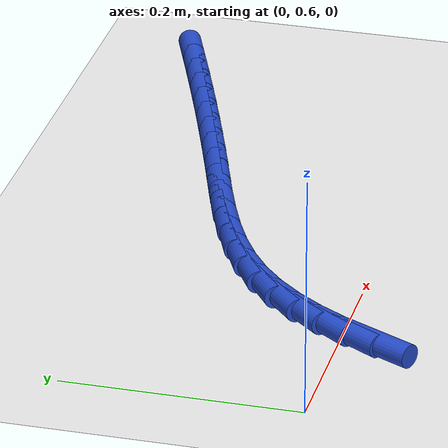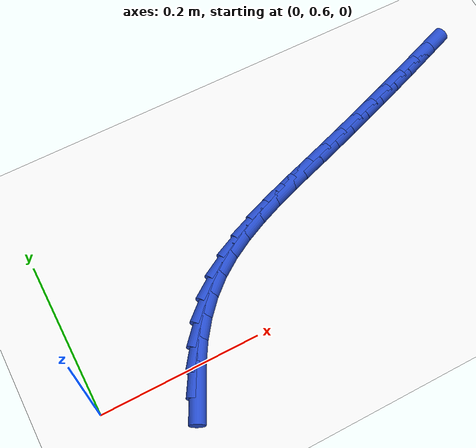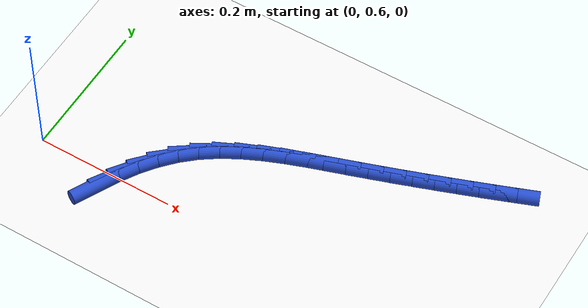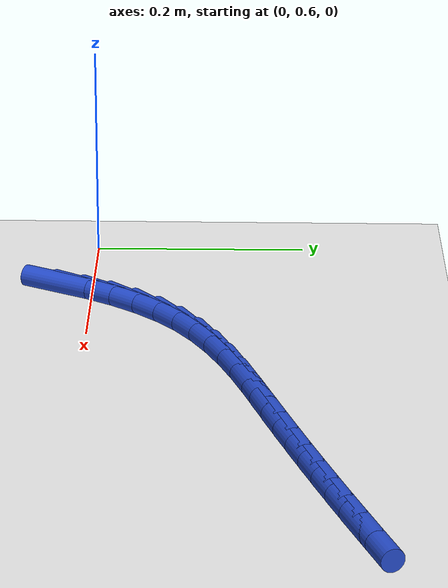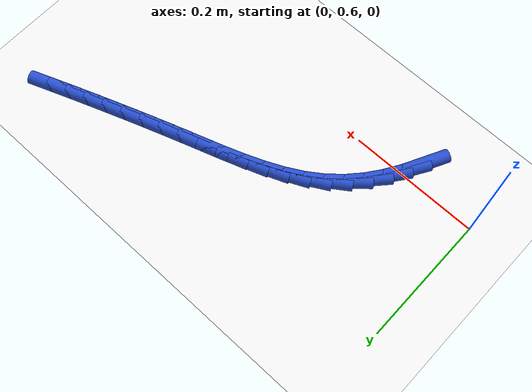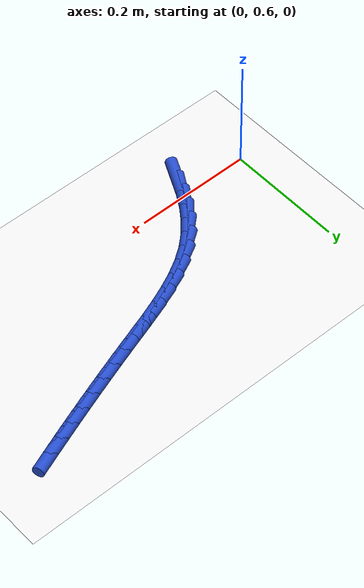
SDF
<sdf version="1.6">
 <world name="default">
  <model name="ground_plane">
   <static>1</static>
   <link name="link">
    <collision name="collision">
     <geometry><plane><normal>0 0 1</normal><size>100 100</size></plane></geometry>
     <surface><friction><ode><mu>100</mu><mu2>50</mu2></ode></friction></surface>
    </collision>
    <visual name="visual">
     <cast_shadows>0</cast_shadows>
     <geometry><plane><normal>0 0 1</normal><size>100 100</size></plane></geometry>
     <material>
      <script><uri>file://media/materials/scripts/gazebo.material</uri><name>Gazebo/WhiteGlow</name></script>
     </material>
    </visual>
   </link>
  </model>
  <model name="line">
   <link name="link_19">
    <pose>0.10825178351441228 0.5725951011586532 0.01 0 1.57 1.1062275232757208</pose>
    <collision name="collision">
     <geometry><cylinder><radius>0.01</radius><length>0.08</length></cylinder></geometry>
    </collision>
    <visual name="visual">
     <material>
      <script><name>Gazebo/Blue</name><uri>file://media/materials/scripts/gazebo.material</uri></script>
     </material>
     <geometry><cylinder><radius>0.01</radius><length>0.08</length></cylinder></geometry>
    </visual>
   </link>
   <link name="link_20">
    <pose>0.12137424331051255 0.5987796901959827 0.01 0 1.57 1.0276849493713263</pose>
    <collision name="collision">
     <geometry><cylinder><radius>0.01</radius><length>0.08</length></cylinder></geometry>
    </collision>
    <visual name="visual">
     <material>
      <script><name>Gazebo/Blue</name><uri>file://media/materials/scripts/gazebo.material</uri></script>
     </material>
     <geometry><cylinder><radius>0.01</radius><length>0.08</length></cylinder></geometry>
    </visual>
   </link>
   <link name="link_21">
    <pose>0.13622535744357284 0.6233811956290853 0.01 0 1.57 0.9377711497290439</pose>
    <collision name="collision">
     <geometry><cylinder><radius>0.01</radius><length>0.08</length></cylinder></geometry>
    </collision>
    <visual name="visual">
     <material>
      <script><name>Gazebo/Blue</name><uri>file://media/materials/scripts/gazebo.material</uri></script>
     </material>
     <geometry><cylinder><radius>0.01</radius><length>0.08</length></cylinder></geometry>
    </visual>
   </link>
   <link name="link_22">
    <pose>0.15297220616764845 0.6462045791288932 0.01 0 1.57 0.8368043085060505</pose>
    <collision name="collision">
     <geometry><cylinder><radius>0.01</radius><length>0.08</length></cylinder></geometry>
    </collision>
    <visual name="visual">
     <material>
      <script><name>Gazebo/Blue</name><uri>file://media/materials/scripts/gazebo.material</uri></script>
     </material>
     <geometry><cylinder><radius>0.01</radius><length>0.08</length></cylinder></geometry>
    </visual>
   </link>
   <link name="link_23">
    <pose>0.17178186973679455 0.667054802366337 0.01 0 1.57 0.726116245392412</pose>
    <collision name="collision">
     <geometry><cylinder><radius>0.01</radius><length>0.08</length></cylinder></geometry>
    </collision>
    <visual name="visual">
     <material>
      <script><name>Gazebo/Blue</name><uri>file://media/materials/scripts/gazebo.material</uri></script>
     </material>
     <geometry><cylinder><radius>0.01</radius><length>0.08</length></cylinder></geometry>
    </visual>
   </link>
   <link name="link_24">
    <pose>0.19282142840506644 0.6857368270123481 0.01 0 1.57 0.611949974813165</pose>
    <collision name="collision">
     <geometry><cylinder><radius>0.01</radius><length>0.08</length></cylinder></geometry>
    </collision>
    <visual name="visual">
     <material>
      <script><name>Gazebo/Blue</name><uri>file://media/materials/scripts/gazebo.material</uri></script>
     </material>
     <geometry><cylinder><radius>0.01</radius><length>0.08</length></cylinder></geometry>
    </visual>
   </link>
   <link name="link_25">
    <pose>0.21617948076257365 0.7021301000594293 0.01 0 1.57 0.5149626203158446</pose>
    <collision name="collision">
     <geometry><cylinder><radius>0.01</radius><length>0.08</length></cylinder></geometry>
    </collision>
    <visual name="visual">
     <material>
      <script><name>Gazebo/Blue</name><uri>file://media/materials/scripts/gazebo.material</uri></script>
     </material>
     <geometry><cylinder><radius>0.01</radius><length>0.08</length></cylinder></geometry>
    </visual>
   </link>
   <link name="link_26">
    <pose>0.24155100281603242 0.7164876475404285 0.01 0 1.57 0.44002951846939714</pose>
    <collision name="collision">
     <geometry><cylinder><radius>0.01</radius><length>0.08</length></cylinder></geometry>
    </collision>
    <visual name="visual">
     <material>
      <script><name>Gazebo/Blue</name><uri>file://media/materials/scripts/gazebo.material</uri></script>
     </material>
     <geometry><cylinder><radius>0.01</radius><length>0.08</length></cylinder></geometry>
    </visual>
   </link>
   <link name="link_27">
    <pose>0.26850782767663767 0.7291793678595357 0.01 0 1.57 0.3851054796450259</pose>
    <collision name="collision">
     <geometry><cylinder><radius>0.01</radius><length>0.08</length></cylinder></geometry>
    </collision>
    <visual name="visual">
     <material>
      <script><name>Gazebo/Blue</name><uri>file://media/materials/scripts/gazebo.material</uri></script>
     </material>
     <geometry><cylinder><radius>0.01</radius><length>0.08</length></cylinder></geometry>
    </visual>
   </link>
   <link name="link_28">
    <pose>0.29662174632080085 0.7405751994101897 0.01 0 1.57 0.34820711535109883</pose>
    <collision name="collision">
     <geometry><cylinder><radius>0.01</radius><length>0.08</length></cylinder></geometry>
    </collision>
    <visual name="visual">
     <material>
      <script><name>Gazebo/Blue</name><uri>file://media/materials/scripts/gazebo.material</uri></script>
     </material>
     <geometry><cylinder><radius>0.01</radius><length>0.08</length></cylinder></geometry>
    </visual>
   </link>
   <link name="link_29">
    <pose>0.32546454972493427 0.7510450805858301 0.01 0 1.57 0.3278949395724656</pose>
    <collision name="collision">
     <geometry><cylinder><radius>0.01</radius><length>0.08</length></cylinder></geometry>
    </collision>
    <visual name="visual">
     <material>
      <script><name>Gazebo/Blue</name><uri>file://media/materials/scripts/gazebo.material</uri></script>
     </material>
     <geometry><cylinder><radius>0.01</radius><length>0.08</length></cylinder></geometry>
    </visual>
   </link>
   <link name="link_30">
    <pose>0.35460802886544934 0.7609589497798951 0.01 0 1.57 0.3233779443561017</pose>
    <collision name="collision">
     <geometry><cylinder><radius>0.01</radius><length>0.08</length></cylinder></geometry>
    </collision>
    <visual name="visual">
     <material>
      <script><name>Gazebo/Blue</name><uri>file://media/materials/scripts/gazebo.material</uri></script>
     </material>
     <geometry><cylinder><radius>0.01</radius><length>0.08</length></cylinder></geometry>
    </visual>
   </link>
   <link name="link_31">
    <pose>0.38362711490932233 0.7706844796199986 0.01 0 1.57 0.3286920556149737</pose>
    <collision name="collision">
     <geometry><cylinder><radius>0.01</radius><length>0.08</length></cylinder></geometry>
    </collision>
    <visual name="visual">
     <material>
      <script><name>Gazebo/Blue</name><uri>file://media/materials/scripts/gazebo.material</uri></script>
     </material>
     <geometry><cylinder><radius>0.01</radius><length>0.08</length></cylinder></geometry>
    </visual>
   </link>
   <link name="link_32">
    <pose>0.4122801526897016 0.7804570028619167 0.01 0 1.57 0.33470451549707375</pose>
    <collision name="collision">
     <geometry><cylinder><radius>0.01</radius><length>0.08</length></cylinder></geometry>
    </collision>
    <visual name="visual">
     <material>
      <script><name>Gazebo/Blue</name><uri>file://media/materials/scripts/gazebo.material</uri></script>
     </material>
     <geometry><cylinder><radius>0.01</radius><length>0.08</length></cylinder></geometry>
    </visual>
   </link>
   <link name="link_33">
    <pose>0.440606941147344 0.7903087725165727 0.01 0 1.57 0.340591693265679</pose>
    <collision name="collision">
     <geometry><cylinder><radius>0.01</radius><length>0.08</length></cylinder></geometry>
    </collision>
    <visual name="visual">
     <material>
      <script><name>Gazebo/Blue</name><uri>file://media/materials/scripts/gazebo.material</uri></script>
     </material>
     <geometry><cylinder><radius>0.01</radius><length>0.08</length></cylinder></geometry>
    </visual>
   </link>
   <link name="link_34">
    <pose>0.46867116174943524 0.8002548094520903 0.01 0 1.57 0.3463116413430221</pose>
    <collision name="collision">
     <geometry><cylinder><radius>0.01</radius><length>0.08</length></cylinder></geometry>
    </collision>
    <visual name="visual">
     <material>
      <script><name>Gazebo/Blue</name><uri>file://media/materials/scripts/gazebo.material</uri></script>
     </material>
     <geometry><cylinder><radius>0.01</radius><length>0.08</length></cylinder></geometry>
    </visual>
   </link>
   <link name="link_35">
    <pose>0.49653649596316135 0.8103101345365932 0.01 0 1.57 0.35182365664351933</pose>
    <collision name="collision">
     <geometry><cylinder><radius>0.01</radius><length>0.08</length></cylinder></geometry>
    </collision>
    <visual name="visual">
     <material>
      <script><name>Gazebo/Blue</name><uri>file://media/materials/scripts/gazebo.material</uri></script>
     </material>
     <geometry><cylinder><radius>0.01</radius><length>0.08</length></cylinder></geometry>
    </visual>
   </link>
   <link name="link_36">
    <pose>0.524266625255708 0.8204897686382059 0.01 0 1.57 0.35708921926782794</pose>
    <collision name="collision">
     <geometry><cylinder><radius>0.01</radius><length>0.08</length></cylinder></geometry>
    </collision>
    <visual name="visual">
     <material>
      <script><name>Gazebo/Blue</name><uri>file://media/materials/scripts/gazebo.material</uri></script>
     </material>
     <geometry><cylinder><radius>0.01</radius><length>0.08</length></cylinder></geometry>
    </visual>
   </link>
   <link name="link_37">
    <pose>0.5519252310942612 0.830808732625052 0.01 0 1.57 0.36207287650573394</pose>
    <collision name="collision">
     <geometry><cylinder><radius>0.01</radius><length>0.08</length></cylinder></geometry>
    </collision>
    <visual name="visual">
     <material>
      <script><name>Gazebo/Blue</name><uri>file://media/materials/scripts/gazebo.material</uri></script>
     </material>
     <geometry><cylinder><radius>0.01</radius><length>0.08</length></cylinder></geometry>
    </visual>
   </link>
   <link name="link_38">
    <pose>0.5795759949460065 0.8412820473652557 0.01 0 1.57 0.36674303009309084</pose>
    <collision name="collision">
     <geometry><cylinder><radius>0.01</radius><length>0.08</length></cylinder></geometry>
    </collision>
    <visual name="visual">
     <material>
      <script><name>Gazebo/Blue</name><uri>file://media/materials/scripts/gazebo.material</uri></script>
     </material>
     <geometry><cylinder><radius>0.01</radius><length>0.08</length></cylinder></geometry>
    </visual>
   </link>
  </model>
 </world>
</sdf>
